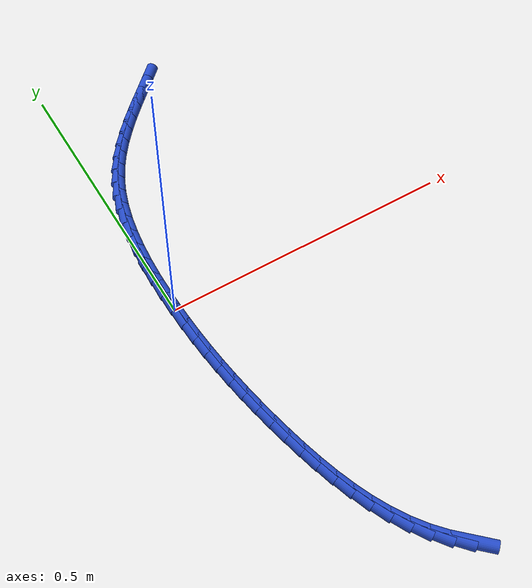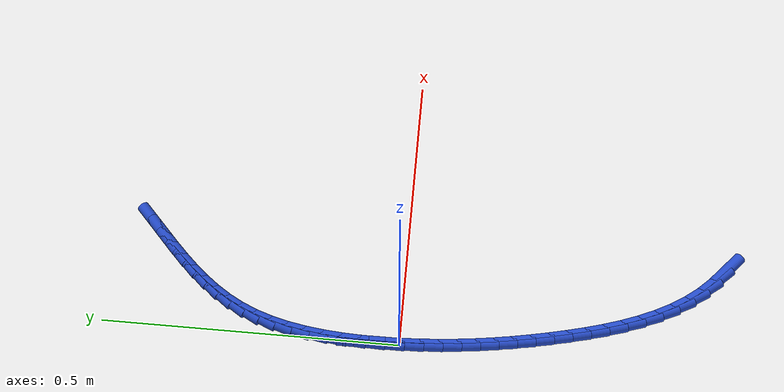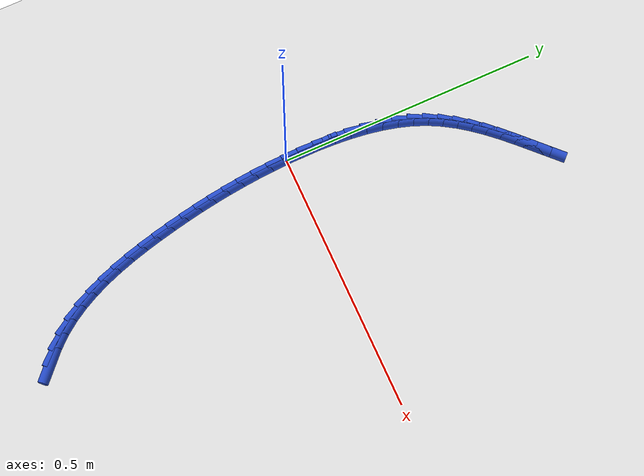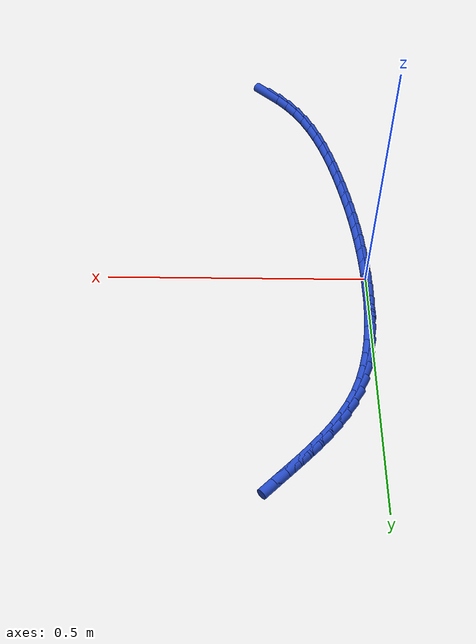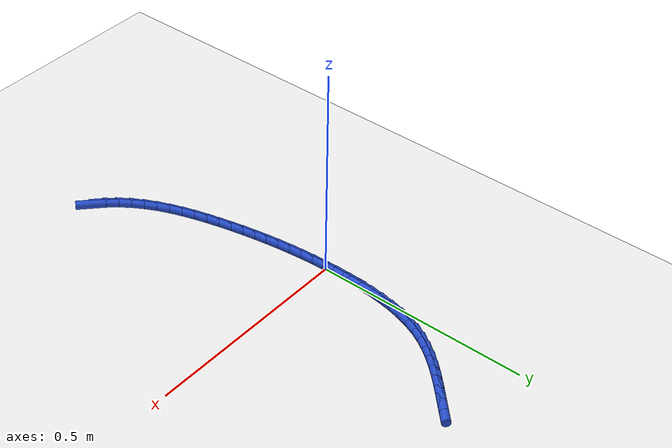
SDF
<sdf version="1.6">
 <world name="default">
  <model name="ground_plane">
   <static>1</static>
   <link name="link">
    <collision name="collision">
     <geometry><plane><normal>0 0 1</normal><size>100 100</size></plane></geometry>
     <surface><friction><ode><mu>100</mu><mu2>50</mu2></ode></friction></surface>
    </collision>
    <visual name="visual">
     <cast_shadows>0</cast_shadows>
     <geometry><plane><normal>0 0 1</normal><size>100 100</size></plane></geometry>
     <material>
      <script><uri>file://media/materials/scripts/gazebo.material</uri><name>Gazebo/WhiteGlow</name></script>
     </material>
    </visual>
   </link>
  </model>
  <model name="line">
   <link name="link_0">
    <pose>7.37257477290143e-18 6.245004513516506e-17 0.01 0 1.57 -1.5494133009734417</pose>
    <collision name="collision">
     <geometry><cylinder><radius>0.01</radius><length>0.08</length></cylinder></geometry>
    </collision>
    <visual name="visual">
     <material>
      <script><name>Gazebo/Blue</name><uri>file://media/materials/scripts/gazebo.material</uri></script>
     </material>
     <geometry><cylinder><radius>0.01</radius><length>0.08</length></cylinder></geometry>
    </visual>
   </link>
   <link name="link_1">
    <pose>-0.0006749325290999921 0.0315591284544479 0.01 0 1.57 1.564344567423251</pose>
    <collision name="collision">
     <geometry><cylinder><radius>0.01</radius><length>0.08</length></cylinder></geometry>
    </collision>
    <visual name="visual">
     <material>
      <script><name>Gazebo/Blue</name><uri>file://media/materials/scripts/gazebo.material</uri></script>
     </material>
     <geometry><cylinder><radius>0.01</radius><length>0.08</length></cylinder></geometry>
    </visual>
   </link>
   <link name="link_2">
    <pose>-0.0004697844371241242 0.06335591964076627 0.01 0 1.57 1.531487045295233</pose>
    <collision name="collision">
     <geometry><cylinder><radius>0.01</radius><length>0.08</length></cylinder></geometry>
    </collision>
    <visual name="visual">
     <material>
      <script><name>Gazebo/Blue</name><uri>file://media/materials/scripts/gazebo.material</uri></script>
     </material>
     <geometry><cylinder><radius>0.01</radius><length>0.08</length></cylinder></geometry>
    </visual>
   </link>
   <link name="link_3">
    <pose>0.0007798856668244447 0.09513025685569365 0.01 0 1.57 1.4928821093926001</pose>
    <collision name="collision">
     <geometry><cylinder><radius>0.01</radius><length>0.08</length></cylinder></geometry>
    </collision>
    <visual name="visual">
     <material>
      <script><name>Gazebo/Blue</name><uri>file://media/materials/scripts/gazebo.material</uri></script>
     </material>
     <geometry><cylinder><radius>0.01</radius><length>0.08</length></cylinder></geometry>
    </visual>
   </link>
   <link name="link_4">
    <pose>0.0032385191736425487 0.12662202339596848 0.01 0 1.57 1.4476057868877434</pose>
    <collision name="collision">
     <geometry><cylinder><radius>0.01</radius><length>0.08</length></cylinder></geometry>
    </collision>
    <visual name="visual">
     <material>
      <script><name>Gazebo/Blue</name><uri>file://media/materials/scripts/gazebo.material</uri></script>
     </material>
     <geometry><cylinder><radius>0.01</radius><length>0.08</length></cylinder></geometry>
    </visual>
   </link>
   <link name="link_5">
    <pose>0.00707055747422702 0.15757110255832912 0.01 0 1.57 1.3945175894375843</pose>
    <collision name="collision">
     <geometry><cylinder><radius>0.01</radius><length>0.08</length></cylinder></geometry>
    </collision>
    <visual name="visual">
     <material>
      <script><name>Gazebo/Blue</name><uri>file://media/materials/scripts/gazebo.material</uri></script>
     </material>
     <geometry><cylinder><radius>0.01</radius><length>0.08</length></cylinder></geometry>
    </visual>
   </link>
   <link name="link_6">
    <pose>0.012440441959474698 0.1877173776395142 0.01 0 1.57 1.33225704031677</pose>
    <collision name="collision">
     <geometry><cylinder><radius>0.01</radius><length>0.08</length></cylinder></geometry>
    </collision>
    <visual name="visual">
     <material>
      <script><name>Gazebo/Blue</name><uri>file://media/materials/scripts/gazebo.material</uri></script>
     </material>
     <geometry><cylinder><radius>0.01</radius><length>0.08</length></cylinder></geometry>
    </visual>
   </link>
   <link name="link_7">
    <pose>0.019512614020282402 0.21680073193626206 0.01 0 1.57 1.2592776344415744</pose>
    <collision name="collision">
     <geometry><cylinder><radius>0.01</radius><length>0.08</length></cylinder></geometry>
    </collision>
    <visual name="visual">
     <material>
      <script><name>Gazebo/Blue</name><uri>file://media/materials/scripts/gazebo.material</uri></script>
     </material>
     <geometry><cylinder><radius>0.01</radius><length>0.08</length></cylinder></geometry>
    </visual>
   </link>
   <link name="link_8">
    <pose>0.028451515047546967 0.2445610487453111 0.01 0 1.57 1.1742802259034448</pose>
    <collision name="collision">
     <geometry><cylinder><radius>0.01</radius><length>0.08</length></cylinder></geometry>
    </collision>
    <visual name="visual">
     <material>
      <script><name>Gazebo/Blue</name><uri>file://media/materials/scripts/gazebo.material</uri></script>
     </material>
     <geometry><cylinder><radius>0.01</radius><length>0.08</length></cylinder></geometry>
    </visual>
   </link>
   <link name="link_9">
    <pose>0.03941522935704486 0.2707466435802484 0.01 0 1.57 1.0853854781770802</pose>
    <collision name="collision">
     <geometry><cylinder><radius>0.01</radius><length>0.08</length></cylinder></geometry>
    </collision>
    <visual name="visual">
     <material>
      <script><name>Gazebo/Blue</name><uri>file://media/materials/scripts/gazebo.material</uri></script>
     </material>
     <geometry><cylinder><radius>0.01</radius><length>0.08</length></cylinder></geometry>
    </visual>
   </link>
   <link name="link_10">
    <pose>0.05238713303723986 0.29533757023524504 0.01 0 1.57 1.004441467432523</pose>
    <collision name="collision">
     <geometry><cylinder><radius>0.01</radius><length>0.08</length></cylinder></geometry>
    </collision>
    <visual name="visual">
     <material>
      <script><name>Gazebo/Blue</name><uri>file://media/materials/scripts/gazebo.material</uri></script>
     </material>
     <geometry><cylinder><radius>0.01</radius><length>0.08</length></cylinder></geometry>
    </visual>
   </link>
   <link name="link_11">
    <pose>0.06715842345208758 0.3185687941813127 0.01 0 1.57 0.9342071787430403</pose>
    <collision name="collision">
     <geometry><cylinder><radius>0.01</radius><length>0.08</length></cylinder></geometry>
    </collision>
    <visual name="visual">
     <material>
      <script><name>Gazebo/Blue</name><uri>file://media/materials/scripts/gazebo.material</uri></script>
     </material>
     <geometry><cylinder><radius>0.01</radius><length>0.08</length></cylinder></geometry>
    </visual>
   </link>
   <link name="link_12">
    <pose>0.0835104368383181 0.34068836098708194 0.01 0 1.57 0.8760364899125974</pose>
    <collision name="collision">
     <geometry><cylinder><radius>0.01</radius><length>0.08</length></cylinder></geometry>
    </collision>
    <visual name="visual">
     <material>
      <script><name>Gazebo/Blue</name><uri>file://media/materials/scripts/gazebo.material</uri></script>
     </material>
     <geometry><cylinder><radius>0.01</radius><length>0.08</length></cylinder></geometry>
    </visual>
   </link>
   <link name="link_13">
    <pose>0.10122450943266136 0.36194431622118245 0.01 0 1.57 0.830507236091904</pose>
    <collision name="collision">
     <geometry><cylinder><radius>0.01</radius><length>0.08</length></cylinder></geometry>
    </collision>
    <visual name="visual">
     <material>
      <script><name>Gazebo/Blue</name><uri>file://media/materials/scripts/gazebo.material</uri></script>
     </material>
     <geometry><cylinder><radius>0.01</radius><length>0.08</length></cylinder></geometry>
    </visual>
   </link>
   <link name="link_14">
    <pose>0.1200819774718474 0.3825847054522442 0.01 0 1.57 0.7976474130714631</pose>
    <collision name="collision">
     <geometry><cylinder><radius>0.01</radius><length>0.08</length></cylinder></geometry>
    </collision>
    <visual name="visual">
     <material>
      <script><name>Gazebo/Blue</name><uri>file://media/materials/scripts/gazebo.material</uri></script>
     </material>
     <geometry><cylinder><radius>0.01</radius><length>0.08</length></cylinder></geometry>
    </visual>
   </link>
   <link name="link_15">
    <pose>0.13986417719260627 0.4028575742488976 0.01 0 1.57 0.7771586840766096</pose>
    <collision name="collision">
     <geometry><cylinder><radius>0.01</radius><length>0.08</length></cylinder></geometry>
    </collision>
    <visual name="visual">
     <material>
      <script><name>Gazebo/Blue</name><uri>file://media/materials/scripts/gazebo.material</uri></script>
     </material>
     <geometry><cylinder><radius>0.01</radius><length>0.08</length></cylinder></geometry>
    </visual>
   </link>
   <link name="link_16">
    <pose>0.160352444831668 0.42301096817977246 0.01 0 1.57 0.7685857170605752</pose>
    <collision name="collision">
     <geometry><cylinder><radius>0.01</radius><length>0.08</length></cylinder></geometry>
    </collision>
    <visual name="visual">
     <material>
      <script><name>Gazebo/Blue</name><uri>file://media/materials/scripts/gazebo.material</uri></script>
     </material>
     <geometry><cylinder><radius>0.01</radius><length>0.08</length></cylinder></geometry>
    </visual>
   </link>
   <link name="link_17">
    <pose>0.18132811662576256 0.44329293281349885 0.01 0 1.57 0.7714184193910074</pose>
    <collision name="collision">
     <geometry><cylinder><radius>0.01</radius><length>0.08</length></cylinder></geometry>
    </collision>
    <visual name="visual">
     <material>
      <script><name>Gazebo/Blue</name><uri>file://media/materials/scripts/gazebo.material</uri></script>
     </material>
     <geometry><cylinder><radius>0.01</radius><length>0.08</length></cylinder></geometry>
    </visual>
   </link>
   <link name="link_221">
    <pose>0.1740169980461356 -0.5405643622082488 0.01 0 1.57 -0.7502104936475701</pose>
    <collision name="collision">
     <geometry><cylinder><radius>0.01</radius><length>0.08</length></cylinder></geometry>
    </collision>
    <visual name="visual">
     <material>
      <script><name>Gazebo/Blue</name><uri>file://media/materials/scripts/gazebo.material</uri></script>
     </material>
     <geometry><cylinder><radius>0.01</radius><length>0.08</length></cylinder></geometry>
    </visual>
   </link>
   <link name="link_222">
    <pose>0.15233046208081086 -0.5203527337942768 0.01 0 1.57 -0.8405051041104828</pose>
    <collision name="collision">
     <geometry><cylinder><radius>0.01</radius><length>0.08</length></cylinder></geometry>
    </collision>
    <visual name="visual">
     <material>
      <script><name>Gazebo/Blue</name><uri>file://media/materials/scripts/gazebo.material</uri></script>
     </material>
     <geometry><cylinder><radius>0.01</radius><length>0.08</length></cylinder></geometry>
    </visual>
   </link>
   <link name="link_223">
    <pose>0.13260554227630866 -0.4983245989626733 0.01 0 1.57 -0.9372704500145865</pose>
    <collision name="collision">
     <geometry><cylinder><radius>0.01</radius><length>0.08</length></cylinder></geometry>
    </collision>
    <visual name="visual">
     <material>
      <script><name>Gazebo/Blue</name><uri>file://media/materials/scripts/gazebo.material</uri></script>
     </material>
     <geometry><cylinder><radius>0.01</radius><length>0.08</length></cylinder></geometry>
    </visual>
   </link>
   <link name="link_224">
    <pose>0.11499846633397862 -0.47435403066415943 0.01 0 1.57 -1.0249832666687955</pose>
    <collision name="collision">
     <geometry><cylinder><radius>0.01</radius><length>0.08</length></cylinder></geometry>
    </collision>
    <visual name="visual">
     <material>
      <script><name>Gazebo/Blue</name><uri>file://media/materials/scripts/gazebo.material</uri></script>
     </material>
     <geometry><cylinder><radius>0.01</radius><length>0.08</length></cylinder></geometry>
    </visual>
   </link>
   <link name="link_225">
    <pose>0.09938326941340937 -0.44864404096743704 0.01 0 1.57 -1.10081976270305</pose>
    <collision name="collision">
     <geometry><cylinder><radius>0.01</radius><length>0.08</length></cylinder></geometry>
    </collision>
    <visual name="visual">
     <material>
      <script><name>Gazebo/Blue</name><uri>file://media/materials/scripts/gazebo.material</uri></script>
     </material>
     <geometry><cylinder><radius>0.01</radius><length>0.08</length></cylinder></geometry>
    </visual>
   </link>
   <link name="link_226">
    <pose>0.08557735913693919 -0.42146365010726683 0.01 0 1.57 -1.1654402886823199</pose>
    <collision name="collision">
     <geometry><cylinder><radius>0.01</radius><length>0.08</length></cylinder></geometry>
    </collision>
    <visual name="visual">
     <material>
      <script><name>Gazebo/Blue</name><uri>file://media/materials/scripts/gazebo.material</uri></script>
     </material>
     <geometry><cylinder><radius>0.01</radius><length>0.08</length></cylinder></geometry>
    </visual>
   </link>
   <link name="link_227">
    <pose>0.07339814312690615 -0.3930818783184093 0.01 0 1.57 -1.2197545699122783</pose>
    <collision name="collision">
     <geometry><cylinder><radius>0.01</radius><length>0.08</length></cylinder></geometry>
    </collision>
    <visual name="visual">
     <material>
      <script><name>Gazebo/Blue</name><uri>file://media/materials/scripts/gazebo.material</uri></script>
     </material>
     <geometry><cylinder><radius>0.01</radius><length>0.08</length></cylinder></geometry>
    </visual>
   </link>
   <link name="link_228">
    <pose>0.06266302900564849 -0.36376774583562516 0.01 0 1.57 -1.264704098055344</pose>
    <collision name="collision">
     <geometry><cylinder><radius>0.01</radius><length>0.08</length></cylinder></geometry>
    </collision>
    <visual name="visual">
     <material>
      <script><name>Gazebo/Blue</name><uri>file://media/materials/scripts/gazebo.material</uri></script>
     </material>
     <geometry><cylinder><radius>0.01</radius><length>0.08</length></cylinder></geometry>
    </visual>
   </link>
   <link name="link_229">
    <pose>0.053189424395504385 -0.33379027289367497 0.01 0 1.57 -1.3011313429208797</pose>
    <collision name="collision">
     <geometry><cylinder><radius>0.01</radius><length>0.08</length></cylinder></geometry>
    </collision>
    <visual name="visual">
     <material>
      <script><name>Gazebo/Blue</name><uri>file://media/materials/scripts/gazebo.material</uri></script>
     </material>
     <geometry><cylinder><radius>0.01</radius><length>0.08</length></cylinder></geometry>
    </visual>
   </link>
   <link name="link_230">
    <pose>0.04479473691881181 -0.3034184797273186 0.01 0 1.57 -1.3297071719740394</pose>
    <collision name="collision">
     <geometry><cylinder><radius>0.01</radius><length>0.08</length></cylinder></geometry>
    </collision>
    <visual name="visual">
     <material>
      <script><name>Gazebo/Blue</name><uri>file://media/materials/scripts/gazebo.material</uri></script>
     </material>
     <geometry><cylinder><radius>0.01</radius><length>0.08</length></cylinder></geometry>
    </visual>
   </link>
   <link name="link_231">
    <pose>0.03729637419790937 -0.2729213865713183 0.01 0 1.57 -1.351109993951589</pose>
    <collision name="collision">
     <geometry><cylinder><radius>0.01</radius><length>0.08</length></cylinder></geometry>
    </collision>
    <visual name="visual">
     <material>
      <script><name>Gazebo/Blue</name><uri>file://media/materials/scripts/gazebo.material</uri></script>
     </material>
     <geometry><cylinder><radius>0.01</radius><length>0.08</length></cylinder></geometry>
    </visual>
   </link>
   <link name="link_232">
    <pose>0.030516704709294115 -0.24255877881696847 0.01 0 1.57 -1.3698227754397254</pose>
    <collision name="collision">
     <geometry><cylinder><radius>0.01</radius><length>0.08</length></cylinder></geometry>
    </collision>
    <visual name="visual">
     <material>
      <script><name>Gazebo/Blue</name><uri>file://media/materials/scripts/gazebo.material</uri></script>
     </material>
     <geometry><cylinder><radius>0.01</radius><length>0.08</length></cylinder></geometry>
    </visual>
   </link>
   <link name="link_233">
    <pose>0.02437477660947924 -0.21241046847142664 0.01 0 1.57 -1.3896705209091433</pose>
    <collision name="collision">
     <geometry><cylinder><radius>0.01</radius><length>0.08</length></cylinder></geometry>
    </collision>
    <visual name="visual">
     <material>
      <script><name>Gazebo/Blue</name><uri>file://media/materials/scripts/gazebo.material</uri></script>
     </material>
     <geometry><cylinder><radius>0.01</radius><length>0.08</length></cylinder></geometry>
    </visual>
   </link>
   <link name="link_234">
    <pose>0.018877528822053995 -0.18239265509730596 0.01 0 1.57 -1.4106419934740089</pose>
    <collision name="collision">
     <geometry><cylinder><radius>0.01</radius><length>0.08</length></cylinder></geometry>
    </collision>
    <visual name="visual">
     <material>
      <script><name>Gazebo/Blue</name><uri>file://media/materials/scripts/gazebo.material</uri></script>
     </material>
     <geometry><cylinder><radius>0.01</radius><length>0.08</length></cylinder></geometry>
    </visual>
   </link>
   <link name="link_235">
    <pose>0.014035098335274013 -0.15241558492224175 0.01 0 1.57 -1.4325554753974126</pose>
    <collision name="collision">
     <geometry><cylinder><radius>0.01</radius><length>0.08</length></cylinder></geometry>
    </collision>
    <visual name="visual">
     <material>
      <script><name>Gazebo/Blue</name><uri>file://media/materials/scripts/gazebo.material</uri></script>
     </material>
     <geometry><cylinder><radius>0.01</radius><length>0.08</length></cylinder></geometry>
    </visual>
   </link>
   <link name="link_236">
    <pose>0.009857622137394922 -0.12238950417386917 0.01 0 1.57 -1.4552057336234538</pose>
    <collision name="collision">
     <geometry><cylinder><radius>0.01</radius><length>0.08</length></cylinder></geometry>
    </collision>
    <visual name="visual">
     <material>
      <script><name>Gazebo/Blue</name><uri>file://media/materials/scripts/gazebo.material</uri></script>
     </material>
     <geometry><cylinder><radius>0.01</radius><length>0.08</length></cylinder></geometry>
    </visual>
   </link>
   <link name="link_237">
    <pose>0.006355237216672348 -0.09222465907982352 0.01 0 1.57 -1.478370549917674</pose>
    <collision name="collision">
     <geometry><cylinder><radius>0.01</radius><length>0.08</length></cylinder></geometry>
    </collision>
    <visual name="visual">
     <material>
      <script><name>Gazebo/Blue</name><uri>file://media/materials/scripts/gazebo.material</uri></script>
     </material>
     <geometry><cylinder><radius>0.01</radius><length>0.08</length></cylinder></geometry>
    </visual>
   </link>
   <link name="link_238">
    <pose>0.003538080561361856 -0.061831295867739236 0.01 0 1.57 -1.5018183906846834</pose>
    <collision name="collision">
     <geometry><cylinder><radius>0.01</radius><length>0.08</length></cylinder></geometry>
    </collision>
    <visual name="visual">
     <material>
      <script><name>Gazebo/Blue</name><uri>file://media/materials/scripts/gazebo.material</uri></script>
     </material>
     <geometry><cylinder><radius>0.01</radius><length>0.08</length></cylinder></geometry>
    </visual>
   </link>
   <link name="link_239">
    <pose>0.0014162891597192255 -0.031119660765253174 0.01 0 1.57 -1.5253166363030544</pose>
    <collision name="collision">
     <geometry><cylinder><radius>0.01</radius><length>0.08</length></cylinder></geometry>
    </collision>
    <visual name="visual">
     <material>
      <script><name>Gazebo/Blue</name><uri>file://media/materials/scripts/gazebo.material</uri></script>
     </material>
     <geometry><cylinder><radius>0.01</radius><length>0.08</length></cylinder></geometry>
    </visual>
   </link>
   <link name="link_240">
    <pose>-5.854691731421724e-18 2.0816681711721685e-16 0.01 0 1.57 -1.5486397174020505</pose>
    <collision name="collision">
     <geometry><cylinder><radius>0.01</radius><length>0.08</length></cylinder></geometry>
    </collision>
    <visual name="visual">
     <material>
      <script><name>Gazebo/Blue</name><uri>file://media/materials/scripts/gazebo.material</uri></script>
     </material>
     <geometry><cylinder><radius>0.01</radius><length>0.08</length></cylinder></geometry>
    </visual>
   </link>
   <link name="link_241">
    <pose>-0.0007006499295402029 0.031617440200385656 0.01 0 1.57 1.5700161279269136</pose>
    <collision name="collision">
     <geometry><cylinder><radius>0.01</radius><length>0.08</length></cylinder></geometry>
    </collision>
    <visual name="visual">
     <material>
      <script><name>Gazebo/Blue</name><uri>file://media/materials/scripts/gazebo.material</uri></script>
     </material>
     <geometry><cylinder><radius>0.01</radius><length>0.08</length></cylinder></geometry>
    </visual>
   </link>
   <link name="link_242">
    <pose>-0.0006755236406457408 0.06382241360826793 0.01 0 1.57 -1.5602122956085442</pose>
    <collision name="collision">
     <geometry><cylinder><radius>0.01</radius><length>0.08</length></cylinder></geometry>
    </collision>
    <visual name="visual">
     <material>
      <script><name>Gazebo/Blue</name><uri>file://media/materials/scripts/gazebo.material</uri></script>
     </material>
     <geometry><cylinder><radius>0.01</radius><length>0.08</length></cylinder></geometry>
    </visual>
   </link>
  </model>
 </world>
</sdf>
